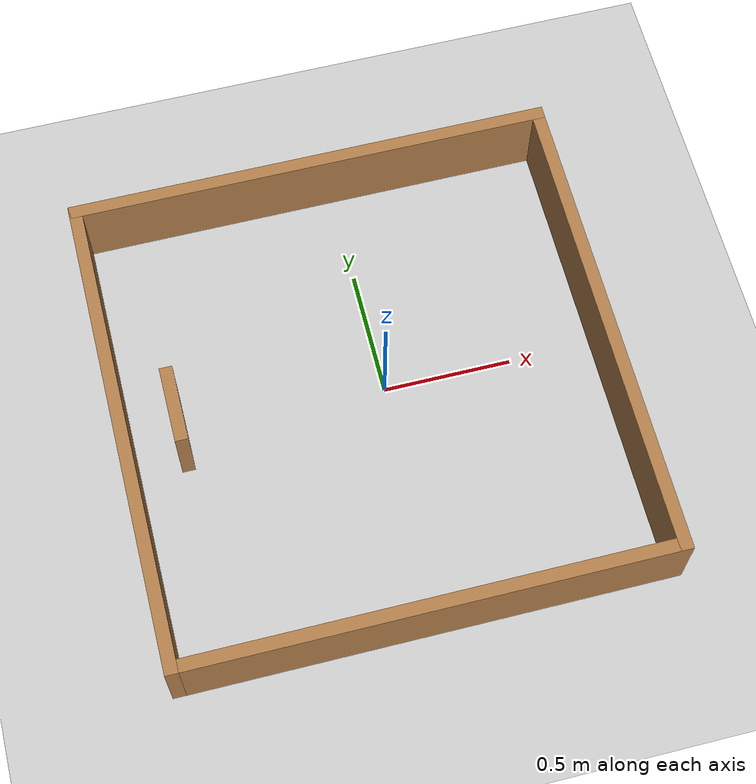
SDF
<sdf version="1.5">
 <world name="default">
  <include><uri>model://sun</uri></include>
  <include><uri>model://ground_plane</uri></include>
  <include><uri>model://square2m</uri><pose>0 0.5 0.01 0 0 0</pose></include>
  <include><uri>model://wall30cm</uri><pose>-0.8 0 0.01 0 0 1.57</pose></include>
 </world>
</sdf>

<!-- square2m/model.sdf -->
<sdf version='1.7'>
  <model name='square2m'>
    <pose>-1.0325 -1.4925 0 0 -0 0</pose>
    <link name='Wall_0'>
      <collision name='Wall_0_Collision'>
        <geometry>
          <box>
            <size>1.9 0.05 0.3</size>
          </box>
        </geometry>
        <pose>0 0 0.15 0 -0 0</pose>
      </collision>
      <visual name='Wall_0_Visual'>
        <pose>0 0 0.15 0 -0 0</pose>
        <geometry>
          <box>
            <size>1.9 0.05 0.3</size>
          </box>
        </geometry>
        <material>
          <script>
            <uri>file://media/materials/scripts/gazebo.material</uri>
            <name>Gazebo/Wood</name>
          </script>
          <ambient>1 1 1 1</ambient>
        </material>
        <meta>
          <layer>0</layer>
        </meta>
      </visual>
      <pose>-0.0825 0.3825 0 0 -0 0</pose>
    </link>
    <link name='Wall_1'>
      <collision name='Wall_1_Collision'>
        <geometry>
          <box>
            <size>1.9 0.05 0.3</size>
          </box>
        </geometry>
        <pose>0 0 0.15 0 -0 0</pose>
      </collision>
      <visual name='Wall_1_Visual'>
        <pose>0 0 0.15 0 -0 0</pose>
        <geometry>
          <box>
            <size>1.9 0.05 0.3</size>
          </box>
        </geometry>
        <material>
          <script>
            <uri>file://media/materials/scripts/gazebo.material</uri>
            <name>Gazebo/Wood</name>
          </script>
          <ambient>1 1 1 1</ambient>
        </material>
        <meta>
          <layer>0</layer>
        </meta>
      </visual>
      <pose>0.8425 -0.5425 0 0 -0 -1.5708</pose>
    </link>
    <link name='Wall_2'>
      <collision name='Wall_2_Collision'>
        <geometry>
          <box>
            <size>1.9 0.05 0.3</size>
          </box>
        </geometry>
        <pose>0 0 0.15 0 -0 0</pose>
      </collision>
      <visual name='Wall_2_Visual'>
        <pose>0 0 0.15 0 -0 0</pose>
        <geometry>
          <box>
            <size>1.9 0.05 0.3</size>
          </box>
        </geometry>
        <material>
          <script>
            <uri>file://media/materials/scripts/gazebo.material</uri>
            <name>Gazebo/Wood</name>
          </script>
          <ambient>1 1 1 1</ambient>
        </material>
        <meta>
          <layer>0</layer>
        </meta>
      </visual>
      <pose>-0.0825 -1.4675 0 0 -0 3.14159</pose>
    </link>
    <link name='Wall_3'>
      <collision name='Wall_3_Collision'>
        <geometry>
          <box>
            <size>1.9 0.05 0.3</size>
          </box>
        </geometry>
        <pose>0 0 0.15 0 -0 0</pose>
      </collision>
      <visual name='Wall_3_Visual'>
        <pose>0 0 0.15 0 -0 0</pose>
        <geometry>
          <box>
            <size>1.9 0.05 0.3</size>
          </box>
        </geometry>
        <material>
          <script>
            <uri>file://media/materials/scripts/gazebo.material</uri>
            <name>Gazebo/Wood</name>
          </script>
          <ambient>1 1 1 1</ambient>
        </material>
        <meta>
          <layer>0</layer>
        </meta>
      </visual>
      <pose>-1.0075 -0.5425 0 0 -0 1.5708</pose>
    </link>
    <static>1</static>
  </model>
</sdf>

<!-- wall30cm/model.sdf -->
<sdf version='1.7'>
  <model name='wall30cm'>
    <pose>0 0 0 0 0 0</pose>
    <link name='Wall_0'>
      <collision name='Wall_0_Collision'>
        <geometry>
          <box>
            <size>0.3 0.05 0.3</size>
          </box>
        </geometry>
        <pose>0 0 0.15 0 -0 0</pose>
      </collision>
      <visual name='Wall_0_Visual'>
        <pose>0 0 0.15 0 -0 0</pose>
        <geometry>
          <box>
            <size>0.3 0.05 0.3</size>
          </box>
        </geometry>
        <material>
          <script>
            <uri>file://media/materials/scripts/gazebo.material</uri>
            <name>Gazebo/Wood</name>
          </script>
          <ambient>1 1 1 1</ambient>
        </material>
        <meta>
          <layer>0</layer>
        </meta>
      </visual>
      <pose>-0 0 0 0 -0 0</pose>
    </link>
    <static>1</static>
  </model>
</sdf>
